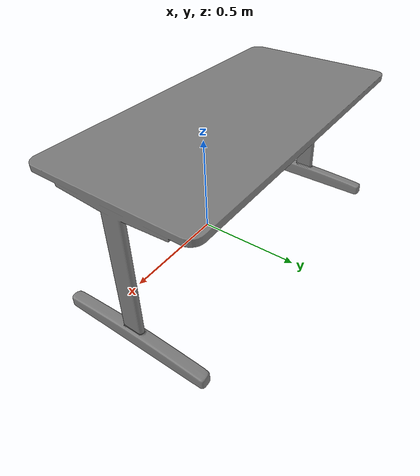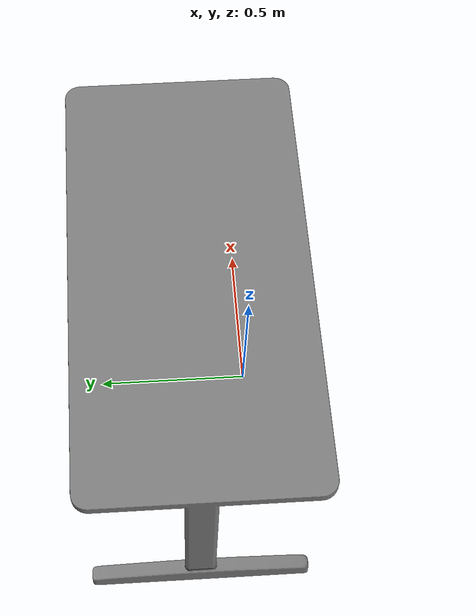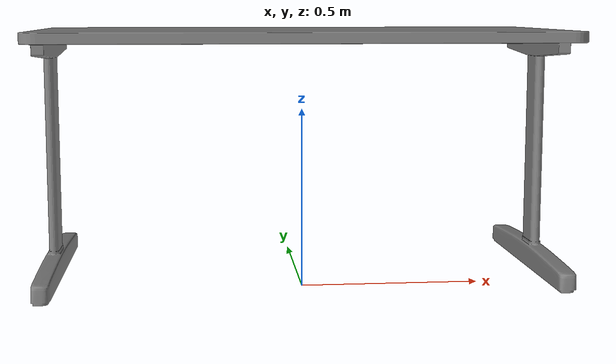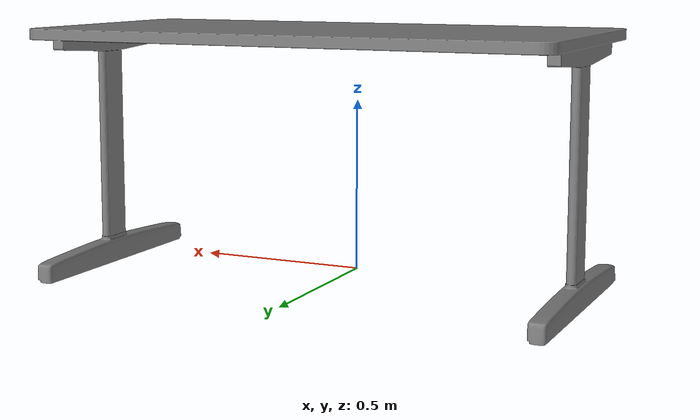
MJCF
<mujoco model="table">
    <compiler angle="radian" meshdir="assets" />
    <size njmax="500" nconmax="100" />
    <asset>
        <mesh name="table" file="table.stl" />
    </asset>
    <worldbody>
        <body name="base" pos="0 0 0">
            <!-- The second geom tag each time is the collision one -->
            <geom type="mesh" contype="0" conaffinity="0" group="1" mesh="table" />
            <geom type="mesh" mesh="table" />
        </body>
    </worldbody>
</mujoco>
